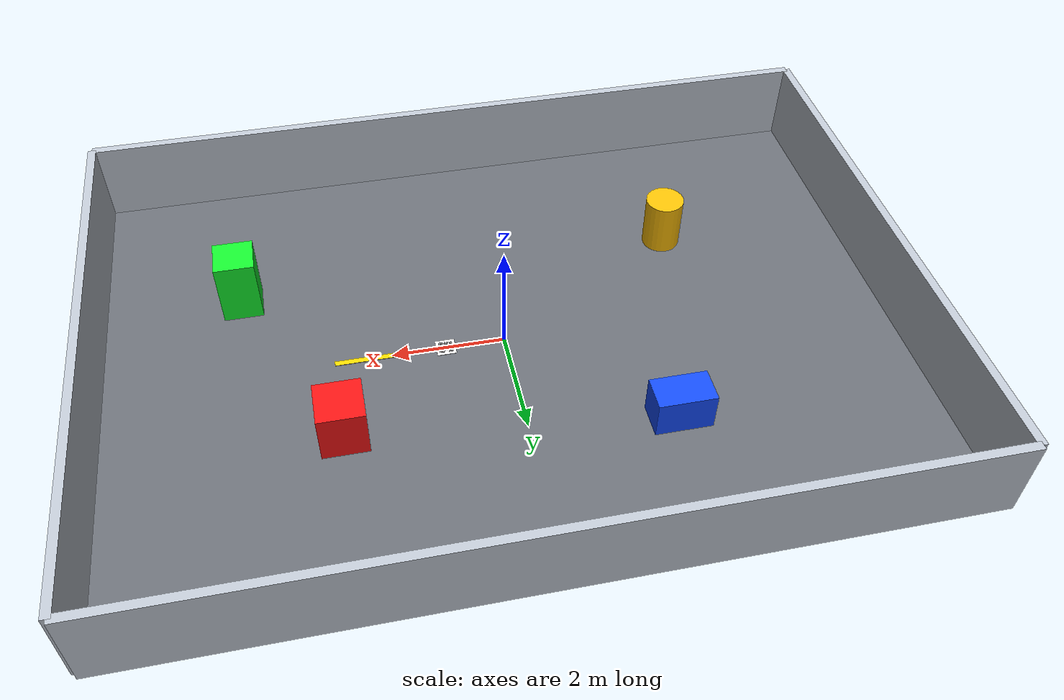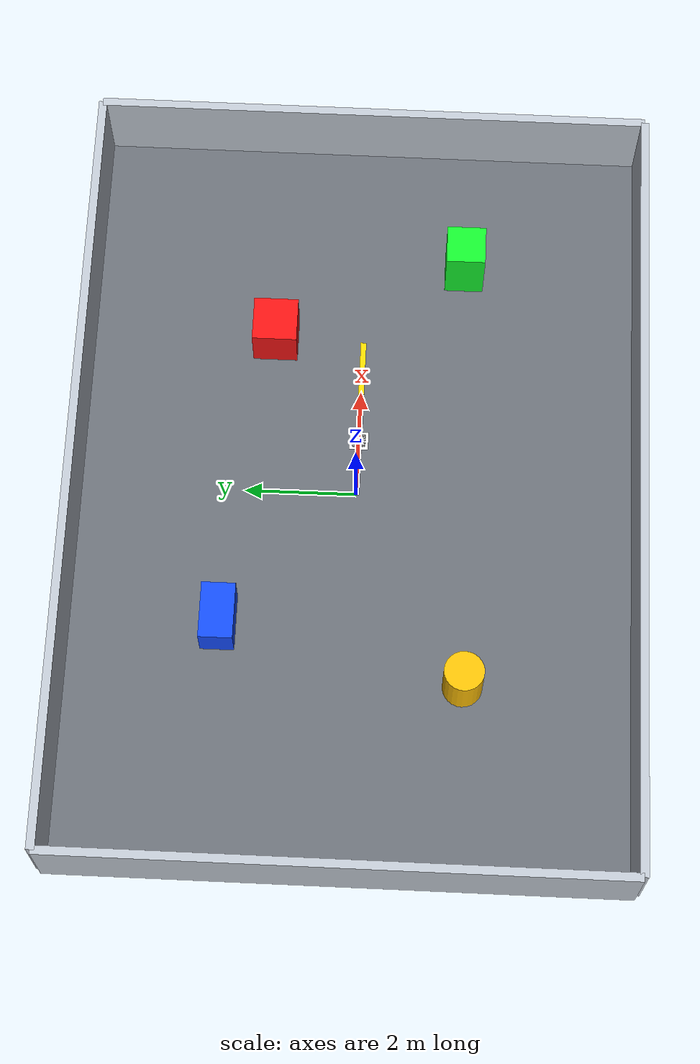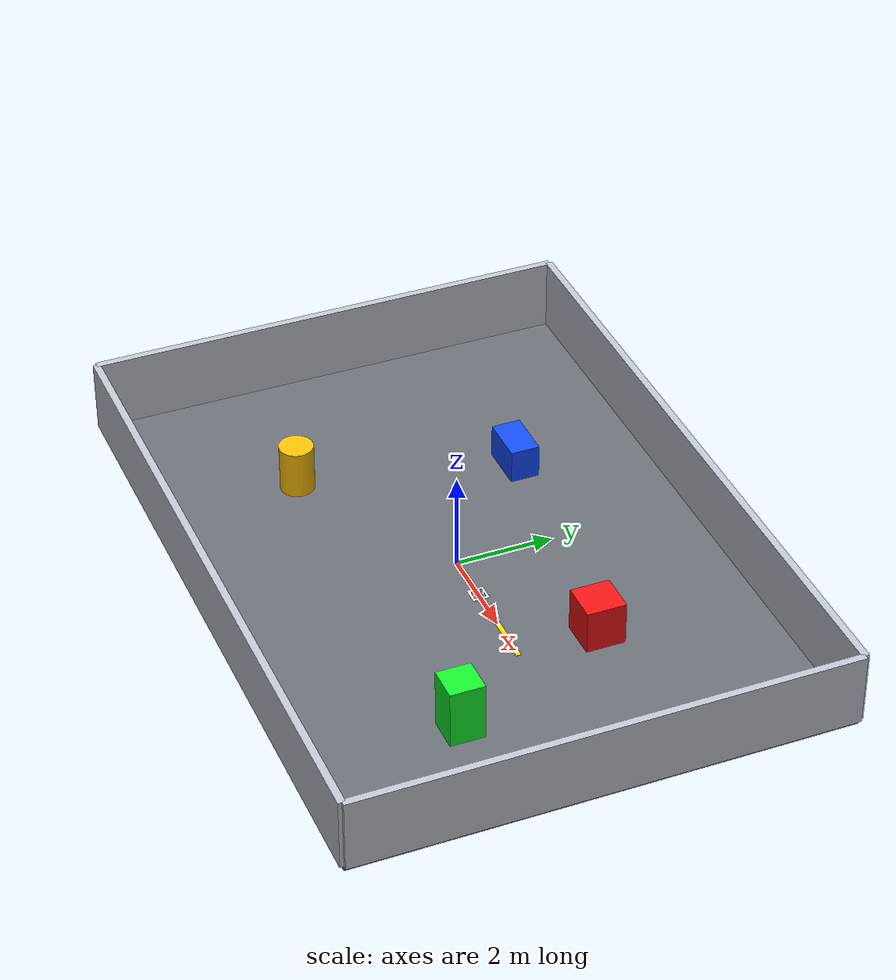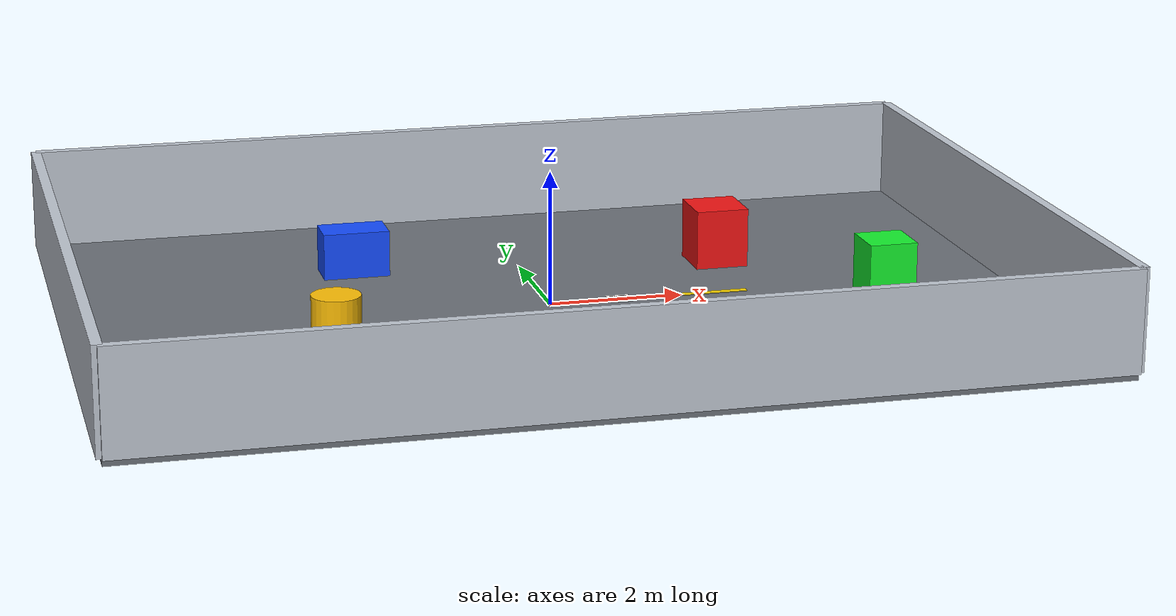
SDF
<?xml version="1.0"?>
<sdf version="1.8">
  <world name="marco_test">
    <physics name="1ms" type="ignored">
      <max_step_size>0.001</max_step_size><real_time_factor>1.0</real_time_factor>
    </physics>
    <plugin filename="ignition-gazebo-physics-system" name="gz::sim::systems::Physics"/>
    <plugin filename="ignition-gazebo-user-commands-system" name="gz::sim::systems::UserCommands"/>
    <plugin filename="ignition-gazebo-scene-broadcaster-system" name="gz::sim::systems::SceneBroadcaster"/>
    <plugin filename="ignition-gazebo-sensors-system" name="gz::sim::systems::Sensors">
      <render_engine>ogre2</render_engine>
    </plugin>

    <scene><ambient>0.55 0.55 0.55</ambient><background>0.18 0.22 0.30</background><shadows>true</shadows></scene>
    <light name="sun" type="directional">
      <pose>0 0 10 0 0 0</pose><cast_shadows>true</cast_shadows>
      <diffuse>0.9 0.9 0.9 1</diffuse><specular>0.2 0.2 0.2 1</specular>
      <direction>-0.4 0.2 -1</direction>
    </light>

    <model name="ground"><static>true</static><link name="link">
      <collision name="collision"><geometry><box><size>14 10 0.1</size></box></geometry></collision>
      <visual name="visual"><geometry><box><size>14 10 0.1</size></box></geometry>
        <material><ambient>0.32 0.34 0.37 1</ambient><diffuse>0.42 0.44 0.47 1</diffuse></material></visual>
      <pose>0 0 -0.05 0 0 0</pose>
    </link></model>

    <!-- Four perimeter walls -->
    <model name="walls"><static>true</static>
      <link name="north"><pose>0 5 0.75 0 0 0</pose><collision name="c"><geometry><box><size>14 0.15 1.5</size></box></geometry></collision><visual name="v"><geometry><box><size>14 0.15 1.5</size></box></geometry><material><diffuse>0.75 0.78 0.82 1</diffuse></material></visual></link>
      <link name="south"><pose>0 -5 0.75 0 0 0</pose><collision name="c"><geometry><box><size>14 0.15 1.5</size></box></geometry></collision><visual name="v"><geometry><box><size>14 0.15 1.5</size></box></geometry><material><diffuse>0.75 0.78 0.82 1</diffuse></material></visual></link>
      <link name="east"><pose>7 0 0.75 0 0 0</pose><collision name="c"><geometry><box><size>0.15 10 1.5</size></box></geometry></collision><visual name="v"><geometry><box><size>0.15 10 1.5</size></box></geometry><material><diffuse>0.75 0.78 0.82 1</diffuse></material></visual></link>
      <link name="west"><pose>-7 0 0.75 0 0 0</pose><collision name="c"><geometry><box><size>0.15 10 1.5</size></box></geometry></collision><visual name="v"><geometry><box><size>0.15 10 1.5</size></box></geometry><material><diffuse>0.75 0.78 0.82 1</diffuse></material></visual></link>
    </model>

    <!-- Light obstacles, outside the initial driving lane but visible to lidar/camera. -->
    <model name="red_box"><static>true</static><pose>3.0 1.6 0.45 0 0 0</pose><link name="link"><collision name="c"><geometry><box><size>0.8 0.8 0.9</size></box></geometry></collision><visual name="v"><geometry><box><size>0.8 0.8 0.9</size></box></geometry><material><ambient>0.8 0.05 0.05 1</ambient><diffuse>0.95 0.08 0.08 1</diffuse></material></visual></link></model>
    <model name="green_box"><static>true</static><pose>4.5 -1.8 0.6 0 0 0</pose><link name="link"><collision name="c"><geometry><box><size>0.7 0.7 1.2</size></box></geometry></collision><visual name="v"><geometry><box><size>0.7 0.7 1.2</size></box></geometry><material><ambient>0.05 0.75 0.15 1</ambient><diffuse>0.08 0.95 0.18 1</diffuse></material></visual></link></model>
    <model name="blue_box"><static>true</static><pose>-2.5 2.3 0.35 0 0 0</pose><link name="link"><collision name="c"><geometry><box><size>1.0 0.6 0.7</size></box></geometry></collision><visual name="v"><geometry><box><size>1.0 0.6 0.7</size></box></geometry><material><ambient>0.05 0.2 0.85 1</ambient><diffuse>0.08 0.3 1 1</diffuse></material></visual></link></model>
    <model name="yellow_cylinder"><static>true</static><pose>-3.5 -2.0 0.5 0 0 0</pose><link name="link"><collision name="c"><geometry><cylinder><radius>0.35</radius><length>1.0</length></cylinder></geometry></collision><visual name="v"><geometry><cylinder><radius>0.35</radius><length>1.0</length></cylinder></geometry><material><ambient>0.9 0.65 0.02 1</ambient><diffuse>1 0.75 0.02 1</diffuse></material></visual></link></model>

    <!-- Phase 9 simulation-only approach lane and real decodable QR texture. -->
    <model name="phase9_lane"><static>true</static><pose>1.5 0 0.006 0 0 0</pose>
      <link name="link"><visual name="yellow_lane"><geometry><box><size>3.0 0.10 0.01</size></box></geometry>
        <material><ambient>1 0.75 0 1</ambient><diffuse>1 0.85 0 1</diffuse></material>
      </visual></link>
    </model>
    <include><uri>model://phase9_qr_geometry</uri>
      <name>phase9_qr</name><pose>1.05 0 0.013 0 0 0</pose>
    </include>
  </world>
</sdf>

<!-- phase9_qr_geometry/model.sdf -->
<sdf version="1.8">
<model name="phase9_qr_geometry"><static>true</static><link name="link">
<visual name="white"><pose>0 0 0 0 0 0</pose><geometry><box><size>0.34 0.34 0.006</size></box></geometry><material><ambient>1 1 1 1</ambient><diffuse>1 1 1 1</diffuse></material></visual>
<visual name="m_0_0"><pose>0.1142857 0.1142857 0.004 0 0 0</pose><geometry><box><size>0.0114286 0.0114286 0.004</size></box></geometry><material><ambient>0 0 0 1</ambient><diffuse>0 0 0 1</diffuse></material></visual>
<visual name="m_0_1"><pose>0.1142857 0.1028571 0.004 0 0 0</pose><geometry><box><size>0.0114286 0.0114286 0.004</size></box></geometry><material><ambient>0 0 0 1</ambient><diffuse>0 0 0 1</diffuse></material></visual>
<visual name="m_0_2"><pose>0.1142857 0.0914286 0.004 0 0 0</pose><geometry><box><size>0.0114286 0.0114286 0.004</size></box></geometry><material><ambient>0 0 0 1</ambient><diffuse>0 0 0 1</diffuse></material></visual>
<visual name="m_0_3"><pose>0.1142857 0.0800000 0.004 0 0 0</pose><geometry><box><size>0.0114286 0.0114286 0.004</size></box></geometry><material><ambient>0 0 0 1</ambient><diffuse>0 0 0 1</diffuse></material></visual>
<visual name="m_0_4"><pose>0.1142857 0.0685714 0.004 0 0 0</pose><geometry><box><size>0.0114286 0.0114286 0.004</size></box></geometry><material><ambient>0 0 0 1</ambient><diffuse>0 0 0 1</diffuse></material></visual>
<visual name="m_0_5"><pose>0.1142857 0.0571429 0.004 0 0 0</pose><geometry><box><size>0.0114286 0.0114286 0.004</size></box></geometry><material><ambient>0 0 0 1</ambient><diffuse>0 0 0 1</diffuse></material></visual>
<visual name="m_0_6"><pose>0.1142857 0.0457143 0.004 0 0 0</pose><geometry><box><size>0.0114286 0.0114286 0.004</size></box></geometry><material><ambient>0 0 0 1</ambient><diffuse>0 0 0 1</diffuse></material></visual>
<visual name="m_0_10"><pose>0.1142857 0.0000000 0.004 0 0 0</pose><geometry><box><size>0.0114286 0.0114286 0.004</size></box></geometry><material><ambient>0 0 0 1</ambient><diffuse>0 0 0 1</diffuse></material></visual>
<visual name="m_0_12"><pose>0.1142857 -0.0228571 0.004 0 0 0</pose><geometry><box><size>0.0114286 0.0114286 0.004</size></box></geometry><material><ambient>0 0 0 1</ambient><diffuse>0 0 0 1</diffuse></material></visual>
<visual name="m_0_14"><pose>0.1142857 -0.0457143 0.004 0 0 0</pose><geometry><box><size>0.0114286 0.0114286 0.004</size></box></geometry><material><ambient>0 0 0 1</ambient><diffuse>0 0 0 1</diffuse></material></visual>
<visual name="m_0_15"><pose>0.1142857 -0.0571429 0.004 0 0 0</pose><geometry><box><size>0.0114286 0.0114286 0.004</size></box></geometry><material><ambient>0 0 0 1</ambient><diffuse>0 0 0 1</diffuse></material></visual>
<visual name="m_0_16"><pose>0.1142857 -0.0685714 0.004 0 0 0</pose><geometry><box><size>0.0114286 0.0114286 0.004</size></box></geometry><material><ambient>0 0 0 1</ambient><diffuse>0 0 0 1</diffuse></material></visual>
<visual name="m_0_17"><pose>0.1142857 -0.0800000 0.004 0 0 0</pose><geometry><box><size>0.0114286 0.0114286 0.004</size></box></geometry><material><ambient>0 0 0 1</ambient><diffuse>0 0 0 1</diffuse></material></visual>
<visual name="m_0_18"><pose>0.1142857 -0.0914286 0.004 0 0 0</pose><geometry><box><size>0.0114286 0.0114286 0.004</size></box></geometry><material><ambient>0 0 0 1</ambient><diffuse>0 0 0 1</diffuse></material></visual>
<visual name="m_0_19"><pose>0.1142857 -0.1028571 0.004 0 0 0</pose><geometry><box><size>0.0114286 0.0114286 0.004</size></box></geometry><material><ambient>0 0 0 1</ambient><diffuse>0 0 0 1</diffuse></material></visual>
<visual name="m_0_20"><pose>0.1142857 -0.1142857 0.004 0 0 0</pose><geometry><box><size>0.0114286 0.0114286 0.004</size></box></geometry><material><ambient>0 0 0 1</ambient><diffuse>0 0 0 1</diffuse></material></visual>
<visual name="m_1_0"><pose>0.1028571 0.1142857 0.004 0 0 0</pose><geometry><box><size>0.0114286 0.0114286 0.004</size></box></geometry><material><ambient>0 0 0 1</ambient><diffuse>0 0 0 1</diffuse></material></visual>
<visual name="m_1_6"><pose>0.1028571 0.0457143 0.004 0 0 0</pose><geometry><box><size>0.0114286 0.0114286 0.004</size></box></geometry><material><ambient>0 0 0 1</ambient><diffuse>0 0 0 1</diffuse></material></visual>
<visual name="m_1_12"><pose>0.1028571 -0.0228571 0.004 0 0 0</pose><geometry><box><size>0.0114286 0.0114286 0.004</size></box></geometry><material><ambient>0 0 0 1</ambient><diffuse>0 0 0 1</diffuse></material></visual>
<visual name="m_1_14"><pose>0.1028571 -0.0457143 0.004 0 0 0</pose><geometry><box><size>0.0114286 0.0114286 0.004</size></box></geometry><material><ambient>0 0 0 1</ambient><diffuse>0 0 0 1</diffuse></material></visual>
<visual name="m_1_20"><pose>0.1028571 -0.1142857 0.004 0 0 0</pose><geometry><box><size>0.0114286 0.0114286 0.004</size></box></geometry><material><ambient>0 0 0 1</ambient><diffuse>0 0 0 1</diffuse></material></visual>
<visual name="m_2_0"><pose>0.0914286 0.1142857 0.004 0 0 0</pose><geometry><box><size>0.0114286 0.0114286 0.004</size></box></geometry><material><ambient>0 0 0 1</ambient><diffuse>0 0 0 1</diffuse></material></visual>
<visual name="m_2_2"><pose>0.0914286 0.0914286 0.004 0 0 0</pose><geometry><box><size>0.0114286 0.0114286 0.004</size></box></geometry><material><ambient>0 0 0 1</ambient><diffuse>0 0 0 1</diffuse></material></visual>
<visual name="m_2_3"><pose>0.0914286 0.0800000 0.004 0 0 0</pose><geometry><box><size>0.0114286 0.0114286 0.004</size></box></geometry><material><ambient>0 0 0 1</ambient><diffuse>0 0 0 1</diffuse></material></visual>
<visual name="m_2_4"><pose>0.0914286 0.0685714 0.004 0 0 0</pose><geometry><box><size>0.0114286 0.0114286 0.004</size></box></geometry><material><ambient>0 0 0 1</ambient><diffuse>0 0 0 1</diffuse></material></visual>
<visual name="m_2_6"><pose>0.0914286 0.0457143 0.004 0 0 0</pose><geometry><box><size>0.0114286 0.0114286 0.004</size></box></geometry><material><ambient>0 0 0 1</ambient><diffuse>0 0 0 1</diffuse></material></visual>
<visual name="m_2_8"><pose>0.0914286 0.0228571 0.004 0 0 0</pose><geometry><box><size>0.0114286 0.0114286 0.004</size></box></geometry><material><ambient>0 0 0 1</ambient><diffuse>0 0 0 1</diffuse></material></visual>
<visual name="m_2_10"><pose>0.0914286 0.0000000 0.004 0 0 0</pose><geometry><box><size>0.0114286 0.0114286 0.004</size></box></geometry><material><ambient>0 0 0 1</ambient><diffuse>0 0 0 1</diffuse></material></visual>
<visual name="m_2_14"><pose>0.0914286 -0.0457143 0.004 0 0 0</pose><geometry><box><size>0.0114286 0.0114286 0.004</size></box></geometry><material><ambient>0 0 0 1</ambient><diffuse>0 0 0 1</diffuse></material></visual>
<visual name="m_2_16"><pose>0.0914286 -0.0685714 0.004 0 0 0</pose><geometry><box><size>0.0114286 0.0114286 0.004</size></box></geometry><material><ambient>0 0 0 1</ambient><diffuse>0 0 0 1</diffuse></material></visual>
<visual name="m_2_17"><pose>0.0914286 -0.0800000 0.004 0 0 0</pose><geometry><box><size>0.0114286 0.0114286 0.004</size></box></geometry><material><ambient>0 0 0 1</ambient><diffuse>0 0 0 1</diffuse></material></visual>
<visual name="m_2_18"><pose>0.0914286 -0.0914286 0.004 0 0 0</pose><geometry><box><size>0.0114286 0.0114286 0.004</size></box></geometry><material><ambient>0 0 0 1</ambient><diffuse>0 0 0 1</diffuse></material></visual>
<visual name="m_2_20"><pose>0.0914286 -0.1142857 0.004 0 0 0</pose><geometry><box><size>0.0114286 0.0114286 0.004</size></box></geometry><material><ambient>0 0 0 1</ambient><diffuse>0 0 0 1</diffuse></material></visual>
<visual name="m_3_0"><pose>0.0800000 0.1142857 0.004 0 0 0</pose><geometry><box><size>0.0114286 0.0114286 0.004</size></box></geometry><material><ambient>0 0 0 1</ambient><diffuse>0 0 0 1</diffuse></material></visual>
<visual name="m_3_2"><pose>0.0800000 0.0914286 0.004 0 0 0</pose><geometry><box><size>0.0114286 0.0114286 0.004</size></box></geometry><material><ambient>0 0 0 1</ambient><diffuse>0 0 0 1</diffuse></material></visual>
<visual name="m_3_3"><pose>0.0800000 0.0800000 0.004 0 0 0</pose><geometry><box><size>0.0114286 0.0114286 0.004</size></box></geometry><material><ambient>0 0 0 1</ambient><diffuse>0 0 0 1</diffuse></material></visual>
<visual name="m_3_4"><pose>0.0800000 0.0685714 0.004 0 0 0</pose><geometry><box><size>0.0114286 0.0114286 0.004</size></box></geometry><material><ambient>0 0 0 1</ambient><diffuse>0 0 0 1</diffuse></material></visual>
<visual name="m_3_6"><pose>0.0800000 0.0457143 0.004 0 0 0</pose><geometry><box><size>0.0114286 0.0114286 0.004</size></box></geometry><material><ambient>0 0 0 1</ambient><diffuse>0 0 0 1</diffuse></material></visual>
<visual name="m_3_12"><pose>0.0800000 -0.0228571 0.004 0 0 0</pose><geometry><box><size>0.0114286 0.0114286 0.004</size></box></geometry><material><ambient>0 0 0 1</ambient><diffuse>0 0 0 1</diffuse></material></visual>
<visual name="m_3_14"><pose>0.0800000 -0.0457143 0.004 0 0 0</pose><geometry><box><size>0.0114286 0.0114286 0.004</size></box></geometry><material><ambient>0 0 0 1</ambient><diffuse>0 0 0 1</diffuse></material></visual>
<visual name="m_3_16"><pose>0.0800000 -0.0685714 0.004 0 0 0</pose><geometry><box><size>0.0114286 0.0114286 0.004</size></box></geometry><material><ambient>0 0 0 1</ambient><diffuse>0 0 0 1</diffuse></material></visual>
<visual name="m_3_17"><pose>0.0800000 -0.0800000 0.004 0 0 0</pose><geometry><box><size>0.0114286 0.0114286 0.004</size></box></geometry><material><ambient>0 0 0 1</ambient><diffuse>0 0 0 1</diffuse></material></visual>
<visual name="m_3_18"><pose>0.0800000 -0.0914286 0.004 0 0 0</pose><geometry><box><size>0.0114286 0.0114286 0.004</size></box></geometry><material><ambient>0 0 0 1</ambient><diffuse>0 0 0 1</diffuse></material></visual>
<visual name="m_3_20"><pose>0.0800000 -0.1142857 0.004 0 0 0</pose><geometry><box><size>0.0114286 0.0114286 0.004</size></box></geometry><material><ambient>0 0 0 1</ambient><diffuse>0 0 0 1</diffuse></material></visual>
<visual name="m_4_0"><pose>0.0685714 0.1142857 0.004 0 0 0</pose><geometry><box><size>0.0114286 0.0114286 0.004</size></box></geometry><material><ambient>0 0 0 1</ambient><diffuse>0 0 0 1</diffuse></material></visual>
<visual name="m_4_2"><pose>0.0685714 0.0914286 0.004 0 0 0</pose><geometry><box><size>0.0114286 0.0114286 0.004</size></box></geometry><material><ambient>0 0 0 1</ambient><diffuse>0 0 0 1</diffuse></material></visual>
<visual name="m_4_3"><pose>0.0685714 0.0800000 0.004 0 0 0</pose><geometry><box><size>0.0114286 0.0114286 0.004</size></box></geometry><material><ambient>0 0 0 1</ambient><diffuse>0 0 0 1</diffuse></material></visual>
<visual name="m_4_4"><pose>0.0685714 0.0685714 0.004 0 0 0</pose><geometry><box><size>0.0114286 0.0114286 0.004</size></box></geometry><material><ambient>0 0 0 1</ambient><diffuse>0 0 0 1</diffuse></material></visual>
<visual name="m_4_6"><pose>0.0685714 0.0457143 0.004 0 0 0</pose><geometry><box><size>0.0114286 0.0114286 0.004</size></box></geometry><material><ambient>0 0 0 1</ambient><diffuse>0 0 0 1</diffuse></material></visual>
<visual name="m_4_9"><pose>0.0685714 0.0114286 0.004 0 0 0</pose><geometry><box><size>0.0114286 0.0114286 0.004</size></box></geometry><material><ambient>0 0 0 1</ambient><diffuse>0 0 0 1</diffuse></material></visual>
<visual name="m_4_11"><pose>0.0685714 -0.0114286 0.004 0 0 0</pose><geometry><box><size>0.0114286 0.0114286 0.004</size></box></geometry><material><ambient>0 0 0 1</ambient><diffuse>0 0 0 1</diffuse></material></visual>
<visual name="m_4_12"><pose>0.0685714 -0.0228571 0.004 0 0 0</pose><geometry><box><size>0.0114286 0.0114286 0.004</size></box></geometry><material><ambient>0 0 0 1</ambient><diffuse>0 0 0 1</diffuse></material></visual>
<visual name="m_4_14"><pose>0.0685714 -0.0457143 0.004 0 0 0</pose><geometry><box><size>0.0114286 0.0114286 0.004</size></box></geometry><material><ambient>0 0 0 1</ambient><diffuse>0 0 0 1</diffuse></material></visual>
<visual name="m_4_16"><pose>0.0685714 -0.0685714 0.004 0 0 0</pose><geometry><box><size>0.0114286 0.0114286 0.004</size></box></geometry><material><ambient>0 0 0 1</ambient><diffuse>0 0 0 1</diffuse></material></visual>
<visual name="m_4_17"><pose>0.0685714 -0.0800000 0.004 0 0 0</pose><geometry><box><size>0.0114286 0.0114286 0.004</size></box></geometry><material><ambient>0 0 0 1</ambient><diffuse>0 0 0 1</diffuse></material></visual>
<visual name="m_4_18"><pose>0.0685714 -0.0914286 0.004 0 0 0</pose><geometry><box><size>0.0114286 0.0114286 0.004</size></box></geometry><material><ambient>0 0 0 1</ambient><diffuse>0 0 0 1</diffuse></material></visual>
<visual name="m_4_20"><pose>0.0685714 -0.1142857 0.004 0 0 0</pose><geometry><box><size>0.0114286 0.0114286 0.004</size></box></geometry><material><ambient>0 0 0 1</ambient><diffuse>0 0 0 1</diffuse></material></visual>
<visual name="m_5_0"><pose>0.0571429 0.1142857 0.004 0 0 0</pose><geometry><box><size>0.0114286 0.0114286 0.004</size></box></geometry><material><ambient>0 0 0 1</ambient><diffuse>0 0 0 1</diffuse></material></visual>
<visual name="m_5_6"><pose>0.0571429 0.0457143 0.004 0 0 0</pose><geometry><box><size>0.0114286 0.0114286 0.004</size></box></geometry><material><ambient>0 0 0 1</ambient><diffuse>0 0 0 1</diffuse></material></visual>
<visual name="m_5_9"><pose>0.0571429 0.0114286 0.004 0 0 0</pose><geometry><box><size>0.0114286 0.0114286 0.004</size></box></geometry><material><ambient>0 0 0 1</ambient><diffuse>0 0 0 1</diffuse></material></visual>
<visual name="m_5_10"><pose>0.0571429 0.0000000 0.004 0 0 0</pose><geometry><box><size>0.0114286 0.0114286 0.004</size></box></geometry><material><ambient>0 0 0 1</ambient><diffuse>0 0 0 1</diffuse></material></visual>
<visual name="m_5_11"><pose>0.0571429 -0.0114286 0.004 0 0 0</pose><geometry><box><size>0.0114286 0.0114286 0.004</size></box></geometry><material><ambient>0 0 0 1</ambient><diffuse>0 0 0 1</diffuse></material></visual>
<visual name="m_5_14"><pose>0.0571429 -0.0457143 0.004 0 0 0</pose><geometry><box><size>0.0114286 0.0114286 0.004</size></box></geometry><material><ambient>0 0 0 1</ambient><diffuse>0 0 0 1</diffuse></material></visual>
<visual name="m_5_20"><pose>0.0571429 -0.1142857 0.004 0 0 0</pose><geometry><box><size>0.0114286 0.0114286 0.004</size></box></geometry><material><ambient>0 0 0 1</ambient><diffuse>0 0 0 1</diffuse></material></visual>
<visual name="m_6_0"><pose>0.0457143 0.1142857 0.004 0 0 0</pose><geometry><box><size>0.0114286 0.0114286 0.004</size></box></geometry><material><ambient>0 0 0 1</ambient><diffuse>0 0 0 1</diffuse></material></visual>
<visual name="m_6_1"><pose>0.0457143 0.1028571 0.004 0 0 0</pose><geometry><box><size>0.0114286 0.0114286 0.004</size></box></geometry><material><ambient>0 0 0 1</ambient><diffuse>0 0 0 1</diffuse></material></visual>
<visual name="m_6_2"><pose>0.0457143 0.0914286 0.004 0 0 0</pose><geometry><box><size>0.0114286 0.0114286 0.004</size></box></geometry><material><ambient>0 0 0 1</ambient><diffuse>0 0 0 1</diffuse></material></visual>
<visual name="m_6_3"><pose>0.0457143 0.0800000 0.004 0 0 0</pose><geometry><box><size>0.0114286 0.0114286 0.004</size></box></geometry><material><ambient>0 0 0 1</ambient><diffuse>0 0 0 1</diffuse></material></visual>
<visual name="m_6_4"><pose>0.0457143 0.0685714 0.004 0 0 0</pose><geometry><box><size>0.0114286 0.0114286 0.004</size></box></geometry><material><ambient>0 0 0 1</ambient><diffuse>0 0 0 1</diffuse></material></visual>
<visual name="m_6_5"><pose>0.0457143 0.0571429 0.004 0 0 0</pose><geometry><box><size>0.0114286 0.0114286 0.004</size></box></geometry><material><ambient>0 0 0 1</ambient><diffuse>0 0 0 1</diffuse></material></visual>
<visual name="m_6_6"><pose>0.0457143 0.0457143 0.004 0 0 0</pose><geometry><box><size>0.0114286 0.0114286 0.004</size></box></geometry><material><ambient>0 0 0 1</ambient><diffuse>0 0 0 1</diffuse></material></visual>
<visual name="m_6_8"><pose>0.0457143 0.0228571 0.004 0 0 0</pose><geometry><box><size>0.0114286 0.0114286 0.004</size></box></geometry><material><ambient>0 0 0 1</ambient><diffuse>0 0 0 1</diffuse></material></visual>
<visual name="m_6_10"><pose>0.0457143 0.0000000 0.004 0 0 0</pose><geometry><box><size>0.0114286 0.0114286 0.004</size></box></geometry><material><ambient>0 0 0 1</ambient><diffuse>0 0 0 1</diffuse></material></visual>
<visual name="m_6_12"><pose>0.0457143 -0.0228571 0.004 0 0 0</pose><geometry><box><size>0.0114286 0.0114286 0.004</size></box></geometry><material><ambient>0 0 0 1</ambient><diffuse>0 0 0 1</diffuse></material></visual>
<visual name="m_6_14"><pose>0.0457143 -0.0457143 0.004 0 0 0</pose><geometry><box><size>0.0114286 0.0114286 0.004</size></box></geometry><material><ambient>0 0 0 1</ambient><diffuse>0 0 0 1</diffuse></material></visual>
<visual name="m_6_15"><pose>0.0457143 -0.0571429 0.004 0 0 0</pose><geometry><box><size>0.0114286 0.0114286 0.004</size></box></geometry><material><ambient>0 0 0 1</ambient><diffuse>0 0 0 1</diffuse></material></visual>
<visual name="m_6_16"><pose>0.0457143 -0.0685714 0.004 0 0 0</pose><geometry><box><size>0.0114286 0.0114286 0.004</size></box></geometry><material><ambient>0 0 0 1</ambient><diffuse>0 0 0 1</diffuse></material></visual>
<visual name="m_6_17"><pose>0.0457143 -0.0800000 0.004 0 0 0</pose><geometry><box><size>0.0114286 0.0114286 0.004</size></box></geometry><material><ambient>0 0 0 1</ambient><diffuse>0 0 0 1</diffuse></material></visual>
<visual name="m_6_18"><pose>0.0457143 -0.0914286 0.004 0 0 0</pose><geometry><box><size>0.0114286 0.0114286 0.004</size></box></geometry><material><ambient>0 0 0 1</ambient><diffuse>0 0 0 1</diffuse></material></visual>
<visual name="m_6_19"><pose>0.0457143 -0.1028571 0.004 0 0 0</pose><geometry><box><size>0.0114286 0.0114286 0.004</size></box></geometry><material><ambient>0 0 0 1</ambient><diffuse>0 0 0 1</diffuse></material></visual>
<visual name="m_6_20"><pose>0.0457143 -0.1142857 0.004 0 0 0</pose><geometry><box><size>0.0114286 0.0114286 0.004</size></box></geometry><material><ambient>0 0 0 1</ambient><diffuse>0 0 0 1</diffuse></material></visual>
<visual name="m_7_8"><pose>0.0342857 0.0228571 0.004 0 0 0</pose><geometry><box><size>0.0114286 0.0114286 0.004</size></box></geometry><material><ambient>0 0 0 1</ambient><diffuse>0 0 0 1</diffuse></material></visual>
<visual name="m_7_10"><pose>0.0342857 0.0000000 0.004 0 0 0</pose><geometry><box><size>0.0114286 0.0114286 0.004</size></box></geometry><material><ambient>0 0 0 1</ambient><diffuse>0 0 0 1</diffuse></material></visual>
<visual name="m_8_0"><pose>0.0228571 0.1142857 0.004 0 0 0</pose><geometry><box><size>0.0114286 0.0114286 0.004</size></box></geometry><material><ambient>0 0 0 1</ambient><diffuse>0 0 0 1</diffuse></material></visual>
<visual name="m_8_1"><pose>0.0228571 0.1028571 0.004 0 0 0</pose><geometry><box><size>0.0114286 0.0114286 0.004</size></box></geometry><material><ambient>0 0 0 1</ambient><diffuse>0 0 0 1</diffuse></material></visual>
<visual name="m_8_2"><pose>0.0228571 0.0914286 0.004 0 0 0</pose><geometry><box><size>0.0114286 0.0114286 0.004</size></box></geometry><material><ambient>0 0 0 1</ambient><diffuse>0 0 0 1</diffuse></material></visual>
<visual name="m_8_4"><pose>0.0228571 0.0685714 0.004 0 0 0</pose><geometry><box><size>0.0114286 0.0114286 0.004</size></box></geometry><material><ambient>0 0 0 1</ambient><diffuse>0 0 0 1</diffuse></material></visual>
<visual name="m_8_5"><pose>0.0228571 0.0571429 0.004 0 0 0</pose><geometry><box><size>0.0114286 0.0114286 0.004</size></box></geometry><material><ambient>0 0 0 1</ambient><diffuse>0 0 0 1</diffuse></material></visual>
<visual name="m_8_6"><pose>0.0228571 0.0457143 0.004 0 0 0</pose><geometry><box><size>0.0114286 0.0114286 0.004</size></box></geometry><material><ambient>0 0 0 1</ambient><diffuse>0 0 0 1</diffuse></material></visual>
<visual name="m_8_7"><pose>0.0228571 0.0342857 0.004 0 0 0</pose><geometry><box><size>0.0114286 0.0114286 0.004</size></box></geometry><material><ambient>0 0 0 1</ambient><diffuse>0 0 0 1</diffuse></material></visual>
<visual name="m_8_8"><pose>0.0228571 0.0228571 0.004 0 0 0</pose><geometry><box><size>0.0114286 0.0114286 0.004</size></box></geometry><material><ambient>0 0 0 1</ambient><diffuse>0 0 0 1</diffuse></material></visual>
<visual name="m_8_10"><pose>0.0228571 0.0000000 0.004 0 0 0</pose><geometry><box><size>0.0114286 0.0114286 0.004</size></box></geometry><material><ambient>0 0 0 1</ambient><diffuse>0 0 0 1</diffuse></material></visual>
<visual name="m_8_12"><pose>0.0228571 -0.0228571 0.004 0 0 0</pose><geometry><box><size>0.0114286 0.0114286 0.004</size></box></geometry><material><ambient>0 0 0 1</ambient><diffuse>0 0 0 1</diffuse></material></visual>
<visual name="m_8_13"><pose>0.0228571 -0.0342857 0.004 0 0 0</pose><geometry><box><size>0.0114286 0.0114286 0.004</size></box></geometry><material><ambient>0 0 0 1</ambient><diffuse>0 0 0 1</diffuse></material></visual>
<visual name="m_8_14"><pose>0.0228571 -0.0457143 0.004 0 0 0</pose><geometry><box><size>0.0114286 0.0114286 0.004</size></box></geometry><material><ambient>0 0 0 1</ambient><diffuse>0 0 0 1</diffuse></material></visual>
<visual name="m_8_18"><pose>0.0228571 -0.0914286 0.004 0 0 0</pose><geometry><box><size>0.0114286 0.0114286 0.004</size></box></geometry><material><ambient>0 0 0 1</ambient><diffuse>0 0 0 1</diffuse></material></visual>
<visual name="m_9_3"><pose>0.0114286 0.0800000 0.004 0 0 0</pose><geometry><box><size>0.0114286 0.0114286 0.004</size></box></geometry><material><ambient>0 0 0 1</ambient><diffuse>0 0 0 1</diffuse></material></visual>
<visual name="m_9_4"><pose>0.0114286 0.0685714 0.004 0 0 0</pose><geometry><box><size>0.0114286 0.0114286 0.004</size></box></geometry><material><ambient>0 0 0 1</ambient><diffuse>0 0 0 1</diffuse></material></visual>
<visual name="m_9_7"><pose>0.0114286 0.0342857 0.004 0 0 0</pose><geometry><box><size>0.0114286 0.0114286 0.004</size></box></geometry><material><ambient>0 0 0 1</ambient><diffuse>0 0 0 1</diffuse></material></visual>
<visual name="m_9_8"><pose>0.0114286 0.0228571 0.004 0 0 0</pose><geometry><box><size>0.0114286 0.0114286 0.004</size></box></geometry><material><ambient>0 0 0 1</ambient><diffuse>0 0 0 1</diffuse></material></visual>
<visual name="m_9_10"><pose>0.0114286 0.0000000 0.004 0 0 0</pose><geometry><box><size>0.0114286 0.0114286 0.004</size></box></geometry><material><ambient>0 0 0 1</ambient><diffuse>0 0 0 1</diffuse></material></visual>
<visual name="m_9_11"><pose>0.0114286 -0.0114286 0.004 0 0 0</pose><geometry><box><size>0.0114286 0.0114286 0.004</size></box></geometry><material><ambient>0 0 0 1</ambient><diffuse>0 0 0 1</diffuse></material></visual>
<visual name="m_9_14"><pose>0.0114286 -0.0457143 0.004 0 0 0</pose><geometry><box><size>0.0114286 0.0114286 0.004</size></box></geometry><material><ambient>0 0 0 1</ambient><diffuse>0 0 0 1</diffuse></material></visual>
<visual name="m_9_15"><pose>0.0114286 -0.0571429 0.004 0 0 0</pose><geometry><box><size>0.0114286 0.0114286 0.004</size></box></geometry><material><ambient>0 0 0 1</ambient><diffuse>0 0 0 1</diffuse></material></visual>
<visual name="m_9_16"><pose>0.0114286 -0.0685714 0.004 0 0 0</pose><geometry><box><size>0.0114286 0.0114286 0.004</size></box></geometry><material><ambient>0 0 0 1</ambient><diffuse>0 0 0 1</diffuse></material></visual>
<visual name="m_9_17"><pose>0.0114286 -0.0800000 0.004 0 0 0</pose><geometry><box><size>0.0114286 0.0114286 0.004</size></box></geometry><material><ambient>0 0 0 1</ambient><diffuse>0 0 0 1</diffuse></material></visual>
<visual name="m_9_20"><pose>0.0114286 -0.1142857 0.004 0 0 0</pose><geometry><box><size>0.0114286 0.0114286 0.004</size></box></geometry><material><ambient>0 0 0 1</ambient><diffuse>0 0 0 1</diffuse></material></visual>
<visual name="m_10_5"><pose>0.0000000 0.0571429 0.004 0 0 0</pose><geometry><box><size>0.0114286 0.0114286 0.004</size></box></geometry><material><ambient>0 0 0 1</ambient><diffuse>0 0 0 1</diffuse></material></visual>
<visual name="m_10_6"><pose>0.0000000 0.0457143 0.004 0 0 0</pose><geometry><box><size>0.0114286 0.0114286 0.004</size></box></geometry><material><ambient>0 0 0 1</ambient><diffuse>0 0 0 1</diffuse></material></visual>
<visual name="m_10_7"><pose>0.0000000 0.0342857 0.004 0 0 0</pose><geometry><box><size>0.0114286 0.0114286 0.004</size></box></geometry><material><ambient>0 0 0 1</ambient><diffuse>0 0 0 1</diffuse></material></visual>
<visual name="m_10_9"><pose>0.0000000 0.0114286 0.004 0 0 0</pose><geometry><box><size>0.0114286 0.0114286 0.004</size></box></geometry><material><ambient>0 0 0 1</ambient><diffuse>0 0 0 1</diffuse></material></visual>
<visual name="m_10_11"><pose>0.0000000 -0.0114286 0.004 0 0 0</pose><geometry><box><size>0.0114286 0.0114286 0.004</size></box></geometry><material><ambient>0 0 0 1</ambient><diffuse>0 0 0 1</diffuse></material></visual>
<visual name="m_10_15"><pose>0.0000000 -0.0571429 0.004 0 0 0</pose><geometry><box><size>0.0114286 0.0114286 0.004</size></box></geometry><material><ambient>0 0 0 1</ambient><diffuse>0 0 0 1</diffuse></material></visual>
<visual name="m_10_16"><pose>0.0000000 -0.0685714 0.004 0 0 0</pose><geometry><box><size>0.0114286 0.0114286 0.004</size></box></geometry><material><ambient>0 0 0 1</ambient><diffuse>0 0 0 1</diffuse></material></visual>
<visual name="m_10_17"><pose>0.0000000 -0.0800000 0.004 0 0 0</pose><geometry><box><size>0.0114286 0.0114286 0.004</size></box></geometry><material><ambient>0 0 0 1</ambient><diffuse>0 0 0 1</diffuse></material></visual>
<visual name="m_10_19"><pose>0.0000000 -0.1028571 0.004 0 0 0</pose><geometry><box><size>0.0114286 0.0114286 0.004</size></box></geometry><material><ambient>0 0 0 1</ambient><diffuse>0 0 0 1</diffuse></material></visual>
<visual name="m_10_20"><pose>0.0000000 -0.1142857 0.004 0 0 0</pose><geometry><box><size>0.0114286 0.0114286 0.004</size></box></geometry><material><ambient>0 0 0 1</ambient><diffuse>0 0 0 1</diffuse></material></visual>
<visual name="m_11_1"><pose>-0.0114286 0.1028571 0.004 0 0 0</pose><geometry><box><size>0.0114286 0.0114286 0.004</size></box></geometry><material><ambient>0 0 0 1</ambient><diffuse>0 0 0 1</diffuse></material></visual>
<visual name="m_11_3"><pose>-0.0114286 0.0800000 0.004 0 0 0</pose><geometry><box><size>0.0114286 0.0114286 0.004</size></box></geometry><material><ambient>0 0 0 1</ambient><diffuse>0 0 0 1</diffuse></material></visual>
<visual name="m_11_4"><pose>-0.0114286 0.0685714 0.004 0 0 0</pose><geometry><box><size>0.0114286 0.0114286 0.004</size></box></geometry><material><ambient>0 0 0 1</ambient><diffuse>0 0 0 1</diffuse></material></visual>
<visual name="m_11_8"><pose>-0.0114286 0.0228571 0.004 0 0 0</pose><geometry><box><size>0.0114286 0.0114286 0.004</size></box></geometry><material><ambient>0 0 0 1</ambient><diffuse>0 0 0 1</diffuse></material></visual>
<visual name="m_11_9"><pose>-0.0114286 0.0114286 0.004 0 0 0</pose><geometry><box><size>0.0114286 0.0114286 0.004</size></box></geometry><material><ambient>0 0 0 1</ambient><diffuse>0 0 0 1</diffuse></material></visual>
<visual name="m_11_11"><pose>-0.0114286 -0.0114286 0.004 0 0 0</pose><geometry><box><size>0.0114286 0.0114286 0.004</size></box></geometry><material><ambient>0 0 0 1</ambient><diffuse>0 0 0 1</diffuse></material></visual>
<visual name="m_11_12"><pose>-0.0114286 -0.0228571 0.004 0 0 0</pose><geometry><box><size>0.0114286 0.0114286 0.004</size></box></geometry><material><ambient>0 0 0 1</ambient><diffuse>0 0 0 1</diffuse></material></visual>
<visual name="m_11_16"><pose>-0.0114286 -0.0685714 0.004 0 0 0</pose><geometry><box><size>0.0114286 0.0114286 0.004</size></box></geometry><material><ambient>0 0 0 1</ambient><diffuse>0 0 0 1</diffuse></material></visual>
<visual name="m_12_4"><pose>-0.0228571 0.0685714 0.004 0 0 0</pose><geometry><box><size>0.0114286 0.0114286 0.004</size></box></geometry><material><ambient>0 0 0 1</ambient><diffuse>0 0 0 1</diffuse></material></visual>
<visual name="m_12_6"><pose>-0.0228571 0.0457143 0.004 0 0 0</pose><geometry><box><size>0.0114286 0.0114286 0.004</size></box></geometry><material><ambient>0 0 0 1</ambient><diffuse>0 0 0 1</diffuse></material></visual>
<visual name="m_12_8"><pose>-0.0228571 0.0228571 0.004 0 0 0</pose><geometry><box><size>0.0114286 0.0114286 0.004</size></box></geometry><material><ambient>0 0 0 1</ambient><diffuse>0 0 0 1</diffuse></material></visual>
<visual name="m_12_9"><pose>-0.0228571 0.0114286 0.004 0 0 0</pose><geometry><box><size>0.0114286 0.0114286 0.004</size></box></geometry><material><ambient>0 0 0 1</ambient><diffuse>0 0 0 1</diffuse></material></visual>
<visual name="m_12_10"><pose>-0.0228571 0.0000000 0.004 0 0 0</pose><geometry><box><size>0.0114286 0.0114286 0.004</size></box></geometry><material><ambient>0 0 0 1</ambient><diffuse>0 0 0 1</diffuse></material></visual>
<visual name="m_12_11"><pose>-0.0228571 -0.0114286 0.004 0 0 0</pose><geometry><box><size>0.0114286 0.0114286 0.004</size></box></geometry><material><ambient>0 0 0 1</ambient><diffuse>0 0 0 1</diffuse></material></visual>
<visual name="m_12_13"><pose>-0.0228571 -0.0342857 0.004 0 0 0</pose><geometry><box><size>0.0114286 0.0114286 0.004</size></box></geometry><material><ambient>0 0 0 1</ambient><diffuse>0 0 0 1</diffuse></material></visual>
<visual name="m_12_14"><pose>-0.0228571 -0.0457143 0.004 0 0 0</pose><geometry><box><size>0.0114286 0.0114286 0.004</size></box></geometry><material><ambient>0 0 0 1</ambient><diffuse>0 0 0 1</diffuse></material></visual>
<visual name="m_12_15"><pose>-0.0228571 -0.0571429 0.004 0 0 0</pose><geometry><box><size>0.0114286 0.0114286 0.004</size></box></geometry><material><ambient>0 0 0 1</ambient><diffuse>0 0 0 1</diffuse></material></visual>
<visual name="m_12_17"><pose>-0.0228571 -0.0800000 0.004 0 0 0</pose><geometry><box><size>0.0114286 0.0114286 0.004</size></box></geometry><material><ambient>0 0 0 1</ambient><diffuse>0 0 0 1</diffuse></material></visual>
<visual name="m_13_8"><pose>-0.0342857 0.0228571 0.004 0 0 0</pose><geometry><box><size>0.0114286 0.0114286 0.004</size></box></geometry><material><ambient>0 0 0 1</ambient><diffuse>0 0 0 1</diffuse></material></visual>
<visual name="m_13_9"><pose>-0.0342857 0.0114286 0.004 0 0 0</pose><geometry><box><size>0.0114286 0.0114286 0.004</size></box></geometry><material><ambient>0 0 0 1</ambient><diffuse>0 0 0 1</diffuse></material></visual>
<visual name="m_13_10"><pose>-0.0342857 0.0000000 0.004 0 0 0</pose><geometry><box><size>0.0114286 0.0114286 0.004</size></box></geometry><material><ambient>0 0 0 1</ambient><diffuse>0 0 0 1</diffuse></material></visual>
<visual name="m_13_14"><pose>-0.0342857 -0.0457143 0.004 0 0 0</pose><geometry><box><size>0.0114286 0.0114286 0.004</size></box></geometry><material><ambient>0 0 0 1</ambient><diffuse>0 0 0 1</diffuse></material></visual>
<visual name="m_13_15"><pose>-0.0342857 -0.0571429 0.004 0 0 0</pose><geometry><box><size>0.0114286 0.0114286 0.004</size></box></geometry><material><ambient>0 0 0 1</ambient><diffuse>0 0 0 1</diffuse></material></visual>
<visual name="m_13_16"><pose>-0.0342857 -0.0685714 0.004 0 0 0</pose><geometry><box><size>0.0114286 0.0114286 0.004</size></box></geometry><material><ambient>0 0 0 1</ambient><diffuse>0 0 0 1</diffuse></material></visual>
<visual name="m_13_19"><pose>-0.0342857 -0.1028571 0.004 0 0 0</pose><geometry><box><size>0.0114286 0.0114286 0.004</size></box></geometry><material><ambient>0 0 0 1</ambient><diffuse>0 0 0 1</diffuse></material></visual>
<visual name="m_13_20"><pose>-0.0342857 -0.1142857 0.004 0 0 0</pose><geometry><box><size>0.0114286 0.0114286 0.004</size></box></geometry><material><ambient>0 0 0 1</ambient><diffuse>0 0 0 1</diffuse></material></visual>
<visual name="m_14_0"><pose>-0.0457143 0.1142857 0.004 0 0 0</pose><geometry><box><size>0.0114286 0.0114286 0.004</size></box></geometry><material><ambient>0 0 0 1</ambient><diffuse>0 0 0 1</diffuse></material></visual>
<visual name="m_14_1"><pose>-0.0457143 0.1028571 0.004 0 0 0</pose><geometry><box><size>0.0114286 0.0114286 0.004</size></box></geometry><material><ambient>0 0 0 1</ambient><diffuse>0 0 0 1</diffuse></material></visual>
<visual name="m_14_2"><pose>-0.0457143 0.0914286 0.004 0 0 0</pose><geometry><box><size>0.0114286 0.0114286 0.004</size></box></geometry><material><ambient>0 0 0 1</ambient><diffuse>0 0 0 1</diffuse></material></visual>
<visual name="m_14_3"><pose>-0.0457143 0.0800000 0.004 0 0 0</pose><geometry><box><size>0.0114286 0.0114286 0.004</size></box></geometry><material><ambient>0 0 0 1</ambient><diffuse>0 0 0 1</diffuse></material></visual>
<visual name="m_14_4"><pose>-0.0457143 0.0685714 0.004 0 0 0</pose><geometry><box><size>0.0114286 0.0114286 0.004</size></box></geometry><material><ambient>0 0 0 1</ambient><diffuse>0 0 0 1</diffuse></material></visual>
<visual name="m_14_5"><pose>-0.0457143 0.0571429 0.004 0 0 0</pose><geometry><box><size>0.0114286 0.0114286 0.004</size></box></geometry><material><ambient>0 0 0 1</ambient><diffuse>0 0 0 1</diffuse></material></visual>
<visual name="m_14_6"><pose>-0.0457143 0.0457143 0.004 0 0 0</pose><geometry><box><size>0.0114286 0.0114286 0.004</size></box></geometry><material><ambient>0 0 0 1</ambient><diffuse>0 0 0 1</diffuse></material></visual>
<visual name="m_14_8"><pose>-0.0457143 0.0228571 0.004 0 0 0</pose><geometry><box><size>0.0114286 0.0114286 0.004</size></box></geometry><material><ambient>0 0 0 1</ambient><diffuse>0 0 0 1</diffuse></material></visual>
<visual name="m_14_10"><pose>-0.0457143 0.0000000 0.004 0 0 0</pose><geometry><box><size>0.0114286 0.0114286 0.004</size></box></geometry><material><ambient>0 0 0 1</ambient><diffuse>0 0 0 1</diffuse></material></visual>
<visual name="m_14_12"><pose>-0.0457143 -0.0228571 0.004 0 0 0</pose><geometry><box><size>0.0114286 0.0114286 0.004</size></box></geometry><material><ambient>0 0 0 1</ambient><diffuse>0 0 0 1</diffuse></material></visual>
<visual name="m_14_13"><pose>-0.0457143 -0.0342857 0.004 0 0 0</pose><geometry><box><size>0.0114286 0.0114286 0.004</size></box></geometry><material><ambient>0 0 0 1</ambient><diffuse>0 0 0 1</diffuse></material></visual>
<visual name="m_14_15"><pose>-0.0457143 -0.0571429 0.004 0 0 0</pose><geometry><box><size>0.0114286 0.0114286 0.004</size></box></geometry><material><ambient>0 0 0 1</ambient><diffuse>0 0 0 1</diffuse></material></visual>
<visual name="m_14_16"><pose>-0.0457143 -0.0685714 0.004 0 0 0</pose><geometry><box><size>0.0114286 0.0114286 0.004</size></box></geometry><material><ambient>0 0 0 1</ambient><diffuse>0 0 0 1</diffuse></material></visual>
<visual name="m_14_18"><pose>-0.0457143 -0.0914286 0.004 0 0 0</pose><geometry><box><size>0.0114286 0.0114286 0.004</size></box></geometry><material><ambient>0 0 0 1</ambient><diffuse>0 0 0 1</diffuse></material></visual>
<visual name="m_14_19"><pose>-0.0457143 -0.1028571 0.004 0 0 0</pose><geometry><box><size>0.0114286 0.0114286 0.004</size></box></geometry><material><ambient>0 0 0 1</ambient><diffuse>0 0 0 1</diffuse></material></visual>
<visual name="m_14_20"><pose>-0.0457143 -0.1142857 0.004 0 0 0</pose><geometry><box><size>0.0114286 0.0114286 0.004</size></box></geometry><material><ambient>0 0 0 1</ambient><diffuse>0 0 0 1</diffuse></material></visual>
<visual name="m_15_0"><pose>-0.0571429 0.1142857 0.004 0 0 0</pose><geometry><box><size>0.0114286 0.0114286 0.004</size></box></geometry><material><ambient>0 0 0 1</ambient><diffuse>0 0 0 1</diffuse></material></visual>
<visual name="m_15_6"><pose>-0.0571429 0.0457143 0.004 0 0 0</pose><geometry><box><size>0.0114286 0.0114286 0.004</size></box></geometry><material><ambient>0 0 0 1</ambient><diffuse>0 0 0 1</diffuse></material></visual>
<visual name="m_15_8"><pose>-0.0571429 0.0228571 0.004 0 0 0</pose><geometry><box><size>0.0114286 0.0114286 0.004</size></box></geometry><material><ambient>0 0 0 1</ambient><diffuse>0 0 0 1</diffuse></material></visual>
<visual name="m_15_9"><pose>-0.0571429 0.0114286 0.004 0 0 0</pose><geometry><box><size>0.0114286 0.0114286 0.004</size></box></geometry><material><ambient>0 0 0 1</ambient><diffuse>0 0 0 1</diffuse></material></visual>
<visual name="m_15_19"><pose>-0.0571429 -0.1028571 0.004 0 0 0</pose><geometry><box><size>0.0114286 0.0114286 0.004</size></box></geometry><material><ambient>0 0 0 1</ambient><diffuse>0 0 0 1</diffuse></material></visual>
<visual name="m_15_20"><pose>-0.0571429 -0.1142857 0.004 0 0 0</pose><geometry><box><size>0.0114286 0.0114286 0.004</size></box></geometry><material><ambient>0 0 0 1</ambient><diffuse>0 0 0 1</diffuse></material></visual>
<visual name="m_16_0"><pose>-0.0685714 0.1142857 0.004 0 0 0</pose><geometry><box><size>0.0114286 0.0114286 0.004</size></box></geometry><material><ambient>0 0 0 1</ambient><diffuse>0 0 0 1</diffuse></material></visual>
<visual name="m_16_2"><pose>-0.0685714 0.0914286 0.004 0 0 0</pose><geometry><box><size>0.0114286 0.0114286 0.004</size></box></geometry><material><ambient>0 0 0 1</ambient><diffuse>0 0 0 1</diffuse></material></visual>
<visual name="m_16_3"><pose>-0.0685714 0.0800000 0.004 0 0 0</pose><geometry><box><size>0.0114286 0.0114286 0.004</size></box></geometry><material><ambient>0 0 0 1</ambient><diffuse>0 0 0 1</diffuse></material></visual>
<visual name="m_16_4"><pose>-0.0685714 0.0685714 0.004 0 0 0</pose><geometry><box><size>0.0114286 0.0114286 0.004</size></box></geometry><material><ambient>0 0 0 1</ambient><diffuse>0 0 0 1</diffuse></material></visual>
<visual name="m_16_6"><pose>-0.0685714 0.0457143 0.004 0 0 0</pose><geometry><box><size>0.0114286 0.0114286 0.004</size></box></geometry><material><ambient>0 0 0 1</ambient><diffuse>0 0 0 1</diffuse></material></visual>
<visual name="m_16_8"><pose>-0.0685714 0.0228571 0.004 0 0 0</pose><geometry><box><size>0.0114286 0.0114286 0.004</size></box></geometry><material><ambient>0 0 0 1</ambient><diffuse>0 0 0 1</diffuse></material></visual>
<visual name="m_16_9"><pose>-0.0685714 0.0114286 0.004 0 0 0</pose><geometry><box><size>0.0114286 0.0114286 0.004</size></box></geometry><material><ambient>0 0 0 1</ambient><diffuse>0 0 0 1</diffuse></material></visual>
<visual name="m_16_10"><pose>-0.0685714 0.0000000 0.004 0 0 0</pose><geometry><box><size>0.0114286 0.0114286 0.004</size></box></geometry><material><ambient>0 0 0 1</ambient><diffuse>0 0 0 1</diffuse></material></visual>
<visual name="m_16_12"><pose>-0.0685714 -0.0228571 0.004 0 0 0</pose><geometry><box><size>0.0114286 0.0114286 0.004</size></box></geometry><material><ambient>0 0 0 1</ambient><diffuse>0 0 0 1</diffuse></material></visual>
<visual name="m_16_14"><pose>-0.0685714 -0.0457143 0.004 0 0 0</pose><geometry><box><size>0.0114286 0.0114286 0.004</size></box></geometry><material><ambient>0 0 0 1</ambient><diffuse>0 0 0 1</diffuse></material></visual>
<visual name="m_17_0"><pose>-0.0800000 0.1142857 0.004 0 0 0</pose><geometry><box><size>0.0114286 0.0114286 0.004</size></box></geometry><material><ambient>0 0 0 1</ambient><diffuse>0 0 0 1</diffuse></material></visual>
<visual name="m_17_2"><pose>-0.0800000 0.0914286 0.004 0 0 0</pose><geometry><box><size>0.0114286 0.0114286 0.004</size></box></geometry><material><ambient>0 0 0 1</ambient><diffuse>0 0 0 1</diffuse></material></visual>
<visual name="m_17_3"><pose>-0.0800000 0.0800000 0.004 0 0 0</pose><geometry><box><size>0.0114286 0.0114286 0.004</size></box></geometry><material><ambient>0 0 0 1</ambient><diffuse>0 0 0 1</diffuse></material></visual>
<visual name="m_17_4"><pose>-0.0800000 0.0685714 0.004 0 0 0</pose><geometry><box><size>0.0114286 0.0114286 0.004</size></box></geometry><material><ambient>0 0 0 1</ambient><diffuse>0 0 0 1</diffuse></material></visual>
<visual name="m_17_6"><pose>-0.0800000 0.0457143 0.004 0 0 0</pose><geometry><box><size>0.0114286 0.0114286 0.004</size></box></geometry><material><ambient>0 0 0 1</ambient><diffuse>0 0 0 1</diffuse></material></visual>
<visual name="m_17_9"><pose>-0.0800000 0.0114286 0.004 0 0 0</pose><geometry><box><size>0.0114286 0.0114286 0.004</size></box></geometry><material><ambient>0 0 0 1</ambient><diffuse>0 0 0 1</diffuse></material></visual>
<visual name="m_17_11"><pose>-0.0800000 -0.0114286 0.004 0 0 0</pose><geometry><box><size>0.0114286 0.0114286 0.004</size></box></geometry><material><ambient>0 0 0 1</ambient><diffuse>0 0 0 1</diffuse></material></visual>
<visual name="m_17_13"><pose>-0.0800000 -0.0342857 0.004 0 0 0</pose><geometry><box><size>0.0114286 0.0114286 0.004</size></box></geometry><material><ambient>0 0 0 1</ambient><diffuse>0 0 0 1</diffuse></material></visual>
<visual name="m_17_16"><pose>-0.0800000 -0.0685714 0.004 0 0 0</pose><geometry><box><size>0.0114286 0.0114286 0.004</size></box></geometry><material><ambient>0 0 0 1</ambient><diffuse>0 0 0 1</diffuse></material></visual>
<visual name="m_17_17"><pose>-0.0800000 -0.0800000 0.004 0 0 0</pose><geometry><box><size>0.0114286 0.0114286 0.004</size></box></geometry><material><ambient>0 0 0 1</ambient><diffuse>0 0 0 1</diffuse></material></visual>
<visual name="m_17_19"><pose>-0.0800000 -0.1028571 0.004 0 0 0</pose><geometry><box><size>0.0114286 0.0114286 0.004</size></box></geometry><material><ambient>0 0 0 1</ambient><diffuse>0 0 0 1</diffuse></material></visual>
<visual name="m_18_0"><pose>-0.0914286 0.1142857 0.004 0 0 0</pose><geometry><box><size>0.0114286 0.0114286 0.004</size></box></geometry><material><ambient>0 0 0 1</ambient><diffuse>0 0 0 1</diffuse></material></visual>
<visual name="m_18_2"><pose>-0.0914286 0.0914286 0.004 0 0 0</pose><geometry><box><size>0.0114286 0.0114286 0.004</size></box></geometry><material><ambient>0 0 0 1</ambient><diffuse>0 0 0 1</diffuse></material></visual>
<visual name="m_18_3"><pose>-0.0914286 0.0800000 0.004 0 0 0</pose><geometry><box><size>0.0114286 0.0114286 0.004</size></box></geometry><material><ambient>0 0 0 1</ambient><diffuse>0 0 0 1</diffuse></material></visual>
<visual name="m_18_4"><pose>-0.0914286 0.0685714 0.004 0 0 0</pose><geometry><box><size>0.0114286 0.0114286 0.004</size></box></geometry><material><ambient>0 0 0 1</ambient><diffuse>0 0 0 1</diffuse></material></visual>
<visual name="m_18_6"><pose>-0.0914286 0.0457143 0.004 0 0 0</pose><geometry><box><size>0.0114286 0.0114286 0.004</size></box></geometry><material><ambient>0 0 0 1</ambient><diffuse>0 0 0 1</diffuse></material></visual>
<visual name="m_18_8"><pose>-0.0914286 0.0228571 0.004 0 0 0</pose><geometry><box><size>0.0114286 0.0114286 0.004</size></box></geometry><material><ambient>0 0 0 1</ambient><diffuse>0 0 0 1</diffuse></material></visual>
<visual name="m_18_9"><pose>-0.0914286 0.0114286 0.004 0 0 0</pose><geometry><box><size>0.0114286 0.0114286 0.004</size></box></geometry><material><ambient>0 0 0 1</ambient><diffuse>0 0 0 1</diffuse></material></visual>
<visual name="m_18_11"><pose>-0.0914286 -0.0114286 0.004 0 0 0</pose><geometry><box><size>0.0114286 0.0114286 0.004</size></box></geometry><material><ambient>0 0 0 1</ambient><diffuse>0 0 0 1</diffuse></material></visual>
<visual name="m_18_13"><pose>-0.0914286 -0.0342857 0.004 0 0 0</pose><geometry><box><size>0.0114286 0.0114286 0.004</size></box></geometry><material><ambient>0 0 0 1</ambient><diffuse>0 0 0 1</diffuse></material></visual>
<visual name="m_18_14"><pose>-0.0914286 -0.0457143 0.004 0 0 0</pose><geometry><box><size>0.0114286 0.0114286 0.004</size></box></geometry><material><ambient>0 0 0 1</ambient><diffuse>0 0 0 1</diffuse></material></visual>
<visual name="m_18_15"><pose>-0.0914286 -0.0571429 0.004 0 0 0</pose><geometry><box><size>0.0114286 0.0114286 0.004</size></box></geometry><material><ambient>0 0 0 1</ambient><diffuse>0 0 0 1</diffuse></material></visual>
<visual name="m_18_16"><pose>-0.0914286 -0.0685714 0.004 0 0 0</pose><geometry><box><size>0.0114286 0.0114286 0.004</size></box></geometry><material><ambient>0 0 0 1</ambient><diffuse>0 0 0 1</diffuse></material></visual>
<visual name="m_18_17"><pose>-0.0914286 -0.0800000 0.004 0 0 0</pose><geometry><box><size>0.0114286 0.0114286 0.004</size></box></geometry><material><ambient>0 0 0 1</ambient><diffuse>0 0 0 1</diffuse></material></visual>
<visual name="m_18_18"><pose>-0.0914286 -0.0914286 0.004 0 0 0</pose><geometry><box><size>0.0114286 0.0114286 0.004</size></box></geometry><material><ambient>0 0 0 1</ambient><diffuse>0 0 0 1</diffuse></material></visual>
<visual name="m_18_20"><pose>-0.0914286 -0.1142857 0.004 0 0 0</pose><geometry><box><size>0.0114286 0.0114286 0.004</size></box></geometry><material><ambient>0 0 0 1</ambient><diffuse>0 0 0 1</diffuse></material></visual>
<visual name="m_19_0"><pose>-0.1028571 0.1142857 0.004 0 0 0</pose><geometry><box><size>0.0114286 0.0114286 0.004</size></box></geometry><material><ambient>0 0 0 1</ambient><diffuse>0 0 0 1</diffuse></material></visual>
<visual name="m_19_6"><pose>-0.1028571 0.0457143 0.004 0 0 0</pose><geometry><box><size>0.0114286 0.0114286 0.004</size></box></geometry><material><ambient>0 0 0 1</ambient><diffuse>0 0 0 1</diffuse></material></visual>
<visual name="m_19_8"><pose>-0.1028571 0.0228571 0.004 0 0 0</pose><geometry><box><size>0.0114286 0.0114286 0.004</size></box></geometry><material><ambient>0 0 0 1</ambient><diffuse>0 0 0 1</diffuse></material></visual>
<visual name="m_19_11"><pose>-0.1028571 -0.0114286 0.004 0 0 0</pose><geometry><box><size>0.0114286 0.0114286 0.004</size></box></geometry><material><ambient>0 0 0 1</ambient><diffuse>0 0 0 1</diffuse></material></visual>
<visual name="m_19_12"><pose>-0.1028571 -0.0228571 0.004 0 0 0</pose><geometry><box><size>0.0114286 0.0114286 0.004</size></box></geometry><material><ambient>0 0 0 1</ambient><diffuse>0 0 0 1</diffuse></material></visual>
<visual name="m_19_13"><pose>-0.1028571 -0.0342857 0.004 0 0 0</pose><geometry><box><size>0.0114286 0.0114286 0.004</size></box></geometry><material><ambient>0 0 0 1</ambient><diffuse>0 0 0 1</diffuse></material></visual>
<visual name="m_19_16"><pose>-0.1028571 -0.0685714 0.004 0 0 0</pose><geometry><box><size>0.0114286 0.0114286 0.004</size></box></geometry><material><ambient>0 0 0 1</ambient><diffuse>0 0 0 1</diffuse></material></visual>
<visual name="m_19_19"><pose>-0.1028571 -0.1028571 0.004 0 0 0</pose><geometry><box><size>0.0114286 0.0114286 0.004</size></box></geometry><material><ambient>0 0 0 1</ambient><diffuse>0 0 0 1</diffuse></material></visual>
<visual name="m_20_0"><pose>-0.1142857 0.1142857 0.004 0 0 0</pose><geometry><box><size>0.0114286 0.0114286 0.004</size></box></geometry><material><ambient>0 0 0 1</ambient><diffuse>0 0 0 1</diffuse></material></visual>
<visual name="m_20_1"><pose>-0.1142857 0.1028571 0.004 0 0 0</pose><geometry><box><size>0.0114286 0.0114286 0.004</size></box></geometry><material><ambient>0 0 0 1</ambient><diffuse>0 0 0 1</diffuse></material></visual>
<visual name="m_20_2"><pose>-0.1142857 0.0914286 0.004 0 0 0</pose><geometry><box><size>0.0114286 0.0114286 0.004</size></box></geometry><material><ambient>0 0 0 1</ambient><diffuse>0 0 0 1</diffuse></material></visual>
<visual name="m_20_3"><pose>-0.1142857 0.0800000 0.004 0 0 0</pose><geometry><box><size>0.0114286 0.0114286 0.004</size></box></geometry><material><ambient>0 0 0 1</ambient><diffuse>0 0 0 1</diffuse></material></visual>
<visual name="m_20_4"><pose>-0.1142857 0.0685714 0.004 0 0 0</pose><geometry><box><size>0.0114286 0.0114286 0.004</size></box></geometry><material><ambient>0 0 0 1</ambient><diffuse>0 0 0 1</diffuse></material></visual>
<visual name="m_20_5"><pose>-0.1142857 0.0571429 0.004 0 0 0</pose><geometry><box><size>0.0114286 0.0114286 0.004</size></box></geometry><material><ambient>0 0 0 1</ambient><diffuse>0 0 0 1</diffuse></material></visual>
<visual name="m_20_6"><pose>-0.1142857 0.0457143 0.004 0 0 0</pose><geometry><box><size>0.0114286 0.0114286 0.004</size></box></geometry><material><ambient>0 0 0 1</ambient><diffuse>0 0 0 1</diffuse></material></visual>
<visual name="m_20_8"><pose>-0.1142857 0.0228571 0.004 0 0 0</pose><geometry><box><size>0.0114286 0.0114286 0.004</size></box></geometry><material><ambient>0 0 0 1</ambient><diffuse>0 0 0 1</diffuse></material></visual>
<visual name="m_20_9"><pose>-0.1142857 0.0114286 0.004 0 0 0</pose><geometry><box><size>0.0114286 0.0114286 0.004</size></box></geometry><material><ambient>0 0 0 1</ambient><diffuse>0 0 0 1</diffuse></material></visual>
<visual name="m_20_11"><pose>-0.1142857 -0.0114286 0.004 0 0 0</pose><geometry><box><size>0.0114286 0.0114286 0.004</size></box></geometry><material><ambient>0 0 0 1</ambient><diffuse>0 0 0 1</diffuse></material></visual>
<visual name="m_20_14"><pose>-0.1142857 -0.0457143 0.004 0 0 0</pose><geometry><box><size>0.0114286 0.0114286 0.004</size></box></geometry><material><ambient>0 0 0 1</ambient><diffuse>0 0 0 1</diffuse></material></visual>
<visual name="m_20_16"><pose>-0.1142857 -0.0685714 0.004 0 0 0</pose><geometry><box><size>0.0114286 0.0114286 0.004</size></box></geometry><material><ambient>0 0 0 1</ambient><diffuse>0 0 0 1</diffuse></material></visual>
<visual name="m_20_17"><pose>-0.1142857 -0.0800000 0.004 0 0 0</pose><geometry><box><size>0.0114286 0.0114286 0.004</size></box></geometry><material><ambient>0 0 0 1</ambient><diffuse>0 0 0 1</diffuse></material></visual>
<visual name="m_20_19"><pose>-0.1142857 -0.1028571 0.004 0 0 0</pose><geometry><box><size>0.0114286 0.0114286 0.004</size></box></geometry><material><ambient>0 0 0 1</ambient><diffuse>0 0 0 1</diffuse></material></visual>
<visual name="m_20_20"><pose>-0.1142857 -0.1142857 0.004 0 0 0</pose><geometry><box><size>0.0114286 0.0114286 0.004</size></box></geometry><material><ambient>0 0 0 1</ambient><diffuse>0 0 0 1</diffuse></material></visual>
</link></model>
</sdf>
